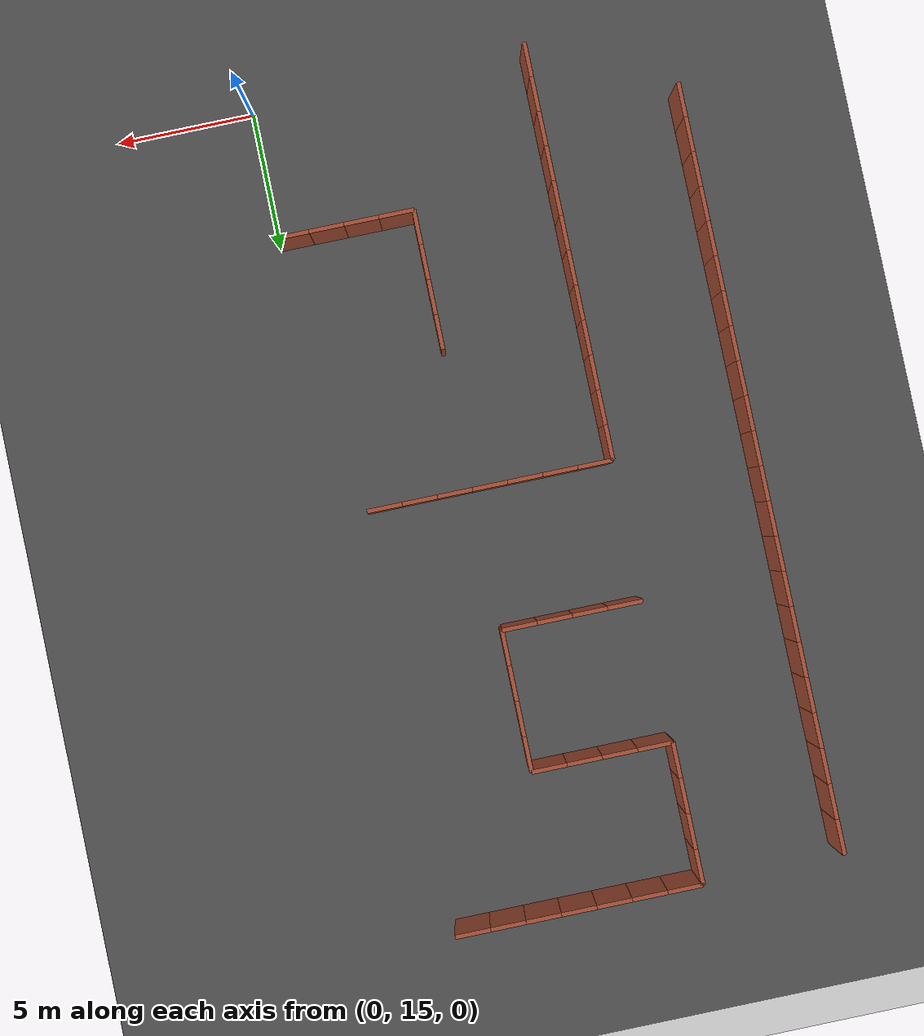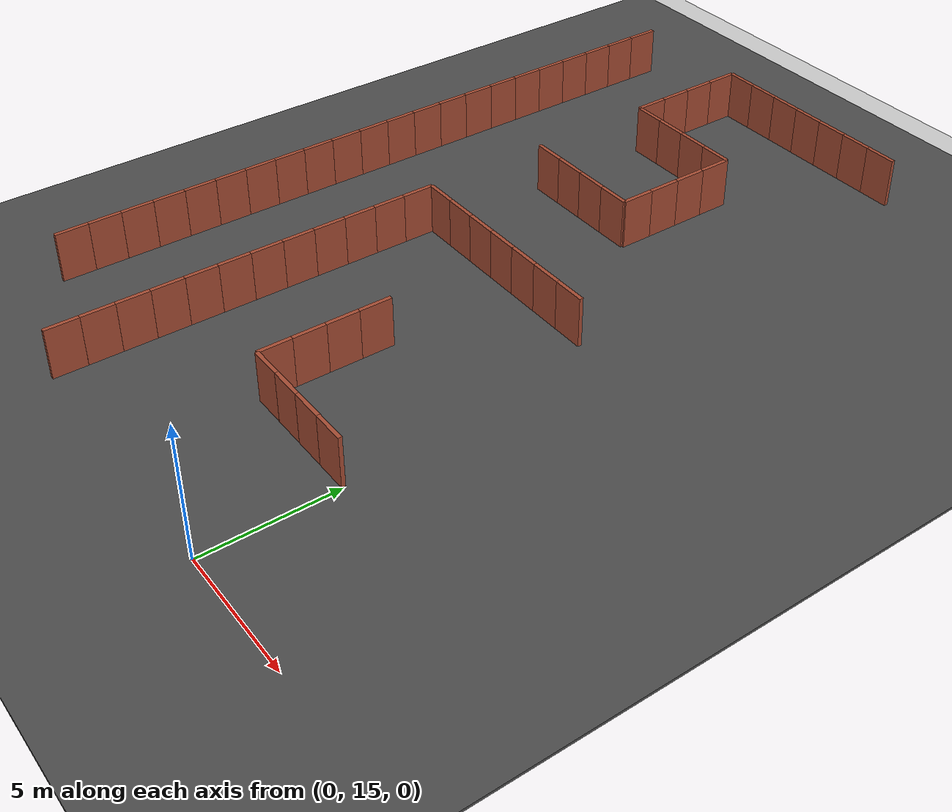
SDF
<sdf version="1.6">
 <world name="default">
  <model name="ground_plane">
   <static>1</static>
   <link name="link">
    <collision name="collision">
     <geometry><plane><normal>0 0 1</normal><size>100 100</size></plane></geometry>
     <surface><friction><ode><mu>100</mu><mu2>50</mu2></ode></friction></surface>
    </collision>
    <visual name="visual">
     <cast_shadows>0</cast_shadows>
     <geometry><plane><normal>0 0 1</normal><size>100 100</size></plane></geometry>
     <material>
      <script><uri>file://media/materials/scripts/gazebo.material</uri><name>Gazebo/Grey</name></script>
     </material>
    </visual>
   </link>
  </model>
  <model name="asphalt_plane">
   <static>1</static>
   <link name="link">
    <collision name="collision"><geometry><box><size>100 100 0.1</size></box></geometry></collision>
    <visual name="visual">
     <cast_shadows>0</cast_shadows>
     <geometry><box><size>100 100 0.1</size></box></geometry>
     <material>
      <script>
       <uri>model://asphalt_plane/materials/scripts</uri>
       <uri>model://asphalt_plane/materials/textures</uri>
       <name>vrc/asphalt</name>
      </script>
     </material>
    </visual>
   </link>
  </model>
  <model name="brick_wall_14_27_horizontal1">
   <pose>-15 18.125 0 0 -0 1.5708</pose>
   <link name="Wall_0">
    <collision name="Wall_0_Collision">
     <geometry><box><size>1.25 0.15 2</size></box></geometry>
     <pose>0 0 1 0 -0 0</pose>
    </collision>
    <visual name="Wall_0_Visual">
     <pose>0 0 1 0 -0 0</pose>
     <geometry><box><size>1.25 0.15 2</size></box></geometry>
     <material>
      <script><uri>file://media/materials/scripts/gazebo.material</uri><name>Gazebo/Bricks</name></script>
      <ambient>1 1 1 1</ambient>
     </material>
     <meta><layer>0</layer></meta>
    </visual>
   </link>
   <static>1</static>
  </model>
  <model name="brick_wall_14_28_horizontal1">
   <pose>-15 20.625 0 0 -0 1.5708</pose>
   <link name="Wall_0">
    <collision name="Wall_0_Collision">
     <geometry><box><size>1.25 0.15 2</size></box></geometry>
     <pose>0 0 1 0 -0 0</pose>
    </collision>
    <visual name="Wall_0_Visual">
     <pose>0 0 1 0 -0 0</pose>
     <geometry><box><size>1.25 0.15 2</size></box></geometry>
     <material>
      <script><uri>file://media/materials/scripts/gazebo.material</uri><name>Gazebo/Bricks</name></script>
      <ambient>1 1 1 1</ambient>
     </material>
     <meta><layer>0</layer></meta>
    </visual>
   </link>
   <static>1</static>
  </model>
  <model name="brick_wall_14_28_horizontal2">
   <pose>-15 19.375 0 0 -0 1.5708</pose>
   <link name="Wall_0">
    <collision name="Wall_0_Collision">
     <geometry><box><size>1.25 0.15 2</size></box></geometry>
     <pose>0 0 1 0 -0 0</pose>
    </collision>
    <visual name="Wall_0_Visual">
     <pose>0 0 1 0 -0 0</pose>
     <geometry><box><size>1.25 0.15 2</size></box></geometry>
     <material>
      <script><uri>file://media/materials/scripts/gazebo.material</uri><name>Gazebo/Bricks</name></script>
      <ambient>1 1 1 1</ambient>
     </material>
     <meta><layer>0</layer></meta>
    </visual>
   </link>
   <static>1</static>
  </model>
  <model name="brick_wall_14_29_horizontal1">
   <pose>-15 23.125 0 0 -0 1.5708</pose>
   <link name="Wall_0">
    <collision name="Wall_0_Collision">
     <geometry><box><size>1.25 0.15 2</size></box></geometry>
     <pose>0 0 1 0 -0 0</pose>
    </collision>
    <visual name="Wall_0_Visual">
     <pose>0 0 1 0 -0 0</pose>
     <geometry><box><size>1.25 0.15 2</size></box></geometry>
     <material>
      <script><uri>file://media/materials/scripts/gazebo.material</uri><name>Gazebo/Bricks</name></script>
      <ambient>1 1 1 1</ambient>
     </material>
     <meta><layer>0</layer></meta>
    </visual>
   </link>
   <static>1</static>
  </model>
  <model name="brick_wall_14_29_horizontal2">
   <pose>-15 21.875 0 0 -0 1.5708</pose>
   <link name="Wall_0">
    <collision name="Wall_0_Collision">
     <geometry><box><size>1.25 0.15 2</size></box></geometry>
     <pose>0 0 1 0 -0 0</pose>
    </collision>
    <visual name="Wall_0_Visual">
     <pose>0 0 1 0 -0 0</pose>
     <geometry><box><size>1.25 0.15 2</size></box></geometry>
     <material>
      <script><uri>file://media/materials/scripts/gazebo.material</uri><name>Gazebo/Bricks</name></script>
      <ambient>1 1 1 1</ambient>
     </material>
     <meta><layer>0</layer></meta>
    </visual>
   </link>
   <static>1</static>
  </model>
  <model name="brick_wall_14_30_horizontal1">
   <pose>-15 25.625 0 0 -0 1.5708</pose>
   <link name="Wall_0">
    <collision name="Wall_0_Collision">
     <geometry><box><size>1.25 0.15 2</size></box></geometry>
     <pose>0 0 1 0 -0 0</pose>
    </collision>
    <visual name="Wall_0_Visual">
     <pose>0 0 1 0 -0 0</pose>
     <geometry><box><size>1.25 0.15 2</size></box></geometry>
     <material>
      <script><uri>file://media/materials/scripts/gazebo.material</uri><name>Gazebo/Bricks</name></script>
      <ambient>1 1 1 1</ambient>
     </material>
     <meta><layer>0</layer></meta>
    </visual>
   </link>
   <static>1</static>
  </model>
  <model name="brick_wall_14_30_horizontal2">
   <pose>-15 24.375 0 0 -0 1.5708</pose>
   <link name="Wall_0">
    <collision name="Wall_0_Collision">
     <geometry><box><size>1.25 0.15 2</size></box></geometry>
     <pose>0 0 1 0 -0 0</pose>
    </collision>
    <visual name="Wall_0_Visual">
     <pose>0 0 1 0 -0 0</pose>
     <geometry><box><size>1.25 0.15 2</size></box></geometry>
     <material>
      <script><uri>file://media/materials/scripts/gazebo.material</uri><name>Gazebo/Bricks</name></script>
      <ambient>1 1 1 1</ambient>
     </material>
     <meta><layer>0</layer></meta>
    </visual>
   </link>
   <static>1</static>
  </model>
  <model name="brick_wall_14_31_horizontal1">
   <pose>-15 28.125 0 0 -0 1.5708</pose>
   <link name="Wall_0">
    <collision name="Wall_0_Collision">
     <geometry><box><size>1.25 0.15 2</size></box></geometry>
     <pose>0 0 1 0 -0 0</pose>
    </collision>
    <visual name="Wall_0_Visual">
     <pose>0 0 1 0 -0 0</pose>
     <geometry><box><size>1.25 0.15 2</size></box></geometry>
     <material>
      <script><uri>file://media/materials/scripts/gazebo.material</uri><name>Gazebo/Bricks</name></script>
      <ambient>1 1 1 1</ambient>
     </material>
     <meta><layer>0</layer></meta>
    </visual>
   </link>
   <static>1</static>
  </model>
  <model name="brick_wall_14_31_horizontal2">
   <pose>-15 26.875 0 0 -0 1.5708</pose>
   <link name="Wall_0">
    <collision name="Wall_0_Collision">
     <geometry><box><size>1.25 0.15 2</size></box></geometry>
     <pose>0 0 1 0 -0 0</pose>
    </collision>
    <visual name="Wall_0_Visual">
     <pose>0 0 1 0 -0 0</pose>
     <geometry><box><size>1.25 0.15 2</size></box></geometry>
     <material>
      <script><uri>file://media/materials/scripts/gazebo.material</uri><name>Gazebo/Bricks</name></script>
      <ambient>1 1 1 1</ambient>
     </material>
     <meta><layer>0</layer></meta>
    </visual>
   </link>
   <static>1</static>
  </model>
  <model name="brick_wall_14_32_horizontal1">
   <pose>-15 30.625 0 0 -0 1.5708</pose>
   <link name="Wall_0">
    <collision name="Wall_0_Collision">
     <geometry><box><size>1.25 0.15 2</size></box></geometry>
     <pose>0 0 1 0 -0 0</pose>
    </collision>
    <visual name="Wall_0_Visual">
     <pose>0 0 1 0 -0 0</pose>
     <geometry><box><size>1.25 0.15 2</size></box></geometry>
     <material>
      <script><uri>file://media/materials/scripts/gazebo.material</uri><name>Gazebo/Bricks</name></script>
      <ambient>1 1 1 1</ambient>
     </material>
     <meta><layer>0</layer></meta>
    </visual>
   </link>
   <static>1</static>
  </model>
  <model name="brick_wall_14_32_horizontal2">
   <pose>-15 29.375 0 0 -0 1.5708</pose>
   <link name="Wall_0">
    <collision name="Wall_0_Collision">
     <geometry><box><size>1.25 0.15 2</size></box></geometry>
     <pose>0 0 1 0 -0 0</pose>
    </collision>
    <visual name="Wall_0_Visual">
     <pose>0 0 1 0 -0 0</pose>
     <geometry><box><size>1.25 0.15 2</size></box></geometry>
     <material>
      <script><uri>file://media/materials/scripts/gazebo.material</uri><name>Gazebo/Bricks</name></script>
      <ambient>1 1 1 1</ambient>
     </material>
     <meta><layer>0</layer></meta>
    </visual>
   </link>
   <static>1</static>
  </model>
  <model name="brick_wall_14_33_horizontal1">
   <pose>-15 33.125 0 0 -0 1.5708</pose>
   <link name="Wall_0">
    <collision name="Wall_0_Collision">
     <geometry><box><size>1.25 0.15 2</size></box></geometry>
     <pose>0 0 1 0 -0 0</pose>
    </collision>
    <visual name="Wall_0_Visual">
     <pose>0 0 1 0 -0 0</pose>
     <geometry><box><size>1.25 0.15 2</size></box></geometry>
     <material>
      <script><uri>file://media/materials/scripts/gazebo.material</uri><name>Gazebo/Bricks</name></script>
      <ambient>1 1 1 1</ambient>
     </material>
     <meta><layer>0</layer></meta>
    </visual>
   </link>
   <static>1</static>
  </model>
  <model name="brick_wall_14_33_horizontal2">
   <pose>-15 31.875 0 0 -0 1.5708</pose>
   <link name="Wall_0">
    <collision name="Wall_0_Collision">
     <geometry><box><size>1.25 0.15 2</size></box></geometry>
     <pose>0 0 1 0 -0 0</pose>
    </collision>
    <visual name="Wall_0_Visual">
     <pose>0 0 1 0 -0 0</pose>
     <geometry><box><size>1.25 0.15 2</size></box></geometry>
     <material>
      <script><uri>file://media/materials/scripts/gazebo.material</uri><name>Gazebo/Bricks</name></script>
      <ambient>1 1 1 1</ambient>
     </material>
     <meta><layer>0</layer></meta>
    </visual>
   </link>
   <static>1</static>
  </model>
  <model name="brick_wall_14_34_horizontal1">
   <pose>-15 35.625 0 0 -0 1.5708</pose>
   <link name="Wall_0">
    <collision name="Wall_0_Collision">
     <geometry><box><size>1.25 0.15 2</size></box></geometry>
     <pose>0 0 1 0 -0 0</pose>
    </collision>
    <visual name="Wall_0_Visual">
     <pose>0 0 1 0 -0 0</pose>
     <geometry><box><size>1.25 0.15 2</size></box></geometry>
     <material>
      <script><uri>file://media/materials/scripts/gazebo.material</uri><name>Gazebo/Bricks</name></script>
      <ambient>1 1 1 1</ambient>
     </material>
     <meta><layer>0</layer></meta>
    </visual>
   </link>
   <static>1</static>
  </model>
  <model name="brick_wall_14_34_horizontal2">
   <pose>-15 34.375 0 0 -0 1.5708</pose>
   <link name="Wall_0">
    <collision name="Wall_0_Collision">
     <geometry><box><size>1.25 0.15 2</size></box></geometry>
     <pose>0 0 1 0 -0 0</pose>
    </collision>
    <visual name="Wall_0_Visual">
     <pose>0 0 1 0 -0 0</pose>
     <geometry><box><size>1.25 0.15 2</size></box></geometry>
     <material>
      <script><uri>file://media/materials/scripts/gazebo.material</uri><name>Gazebo/Bricks</name></script>
      <ambient>1 1 1 1</ambient>
     </material>
     <meta><layer>0</layer></meta>
    </visual>
   </link>
   <static>1</static>
  </model>
  <model name="brick_wall_14_35_horizontal1">
   <pose>-15 38.125 0 0 -0 1.5708</pose>
   <link name="Wall_0">
    <collision name="Wall_0_Collision">
     <geometry><box><size>1.25 0.15 2</size></box></geometry>
     <pose>0 0 1 0 -0 0</pose>
    </collision>
    <visual name="Wall_0_Visual">
     <pose>0 0 1 0 -0 0</pose>
     <geometry><box><size>1.25 0.15 2</size></box></geometry>
     <material>
      <script><uri>file://media/materials/scripts/gazebo.material</uri><name>Gazebo/Bricks</name></script>
      <ambient>1 1 1 1</ambient>
     </material>
     <meta><layer>0</layer></meta>
    </visual>
   </link>
   <static>1</static>
  </model>
  <model name="brick_wall_14_35_horizontal2">
   <pose>-15 36.875 0 0 -0 1.5708</pose>
   <link name="Wall_0">
    <collision name="Wall_0_Collision">
     <geometry><box><size>1.25 0.15 2</size></box></geometry>
     <pose>0 0 1 0 -0 0</pose>
    </collision>
    <visual name="Wall_0_Visual">
     <pose>0 0 1 0 -0 0</pose>
     <geometry><box><size>1.25 0.15 2</size></box></geometry>
     <material>
      <script><uri>file://media/materials/scripts/gazebo.material</uri><name>Gazebo/Bricks</name></script>
      <ambient>1 1 1 1</ambient>
     </material>
     <meta><layer>0</layer></meta>
    </visual>
   </link>
   <static>1</static>
  </model>
  <model name="brick_wall_14_36_horizontal1">
   <pose>-15 40.625 0 0 -0 1.5708</pose>
   <link name="Wall_0">
    <collision name="Wall_0_Collision">
     <geometry><box><size>1.25 0.15 2</size></box></geometry>
     <pose>0 0 1 0 -0 0</pose>
    </collision>
    <visual name="Wall_0_Visual">
     <pose>0 0 1 0 -0 0</pose>
     <geometry><box><size>1.25 0.15 2</size></box></geometry>
     <material>
      <script><uri>file://media/materials/scripts/gazebo.material</uri><name>Gazebo/Bricks</name></script>
      <ambient>1 1 1 1</ambient>
     </material>
     <meta><layer>0</layer></meta>
    </visual>
   </link>
   <static>1</static>
  </model>
  <model name="brick_wall_14_36_horizontal2">
   <pose>-15 39.375 0 0 -0 1.5708</pose>
   <link name="Wall_0">
    <collision name="Wall_0_Collision">
     <geometry><box><size>1.25 0.15 2</size></box></geometry>
     <pose>0 0 1 0 -0 0</pose>
    </collision>
    <visual name="Wall_0_Visual">
     <pose>0 0 1 0 -0 0</pose>
     <geometry><box><size>1.25 0.15 2</size></box></geometry>
     <material>
      <script><uri>file://media/materials/scripts/gazebo.material</uri><name>Gazebo/Bricks</name></script>
      <ambient>1 1 1 1</ambient>
     </material>
     <meta><layer>0</layer></meta>
    </visual>
   </link>
   <static>1</static>
  </model>
  <model name="brick_wall_14_37_horizontal1">
   <pose>-15 43.125 0 0 -0 1.5708</pose>
   <link name="Wall_0">
    <collision name="Wall_0_Collision">
     <geometry><box><size>1.25 0.15 2</size></box></geometry>
     <pose>0 0 1 0 -0 0</pose>
    </collision>
    <visual name="Wall_0_Visual">
     <pose>0 0 1 0 -0 0</pose>
     <geometry><box><size>1.25 0.15 2</size></box></geometry>
     <material>
      <script><uri>file://media/materials/scripts/gazebo.material</uri><name>Gazebo/Bricks</name></script>
      <ambient>1 1 1 1</ambient>
     </material>
     <meta><layer>0</layer></meta>
    </visual>
   </link>
   <static>1</static>
  </model>
  <model name="brick_wall_14_37_horizontal2">
   <pose>-15 41.875 0 0 -0 1.5708</pose>
   <link name="Wall_0">
    <collision name="Wall_0_Collision">
     <geometry><box><size>1.25 0.15 2</size></box></geometry>
     <pose>0 0 1 0 -0 0</pose>
    </collision>
    <visual name="Wall_0_Visual">
     <pose>0 0 1 0 -0 0</pose>
     <geometry><box><size>1.25 0.15 2</size></box></geometry>
     <material>
      <script><uri>file://media/materials/scripts/gazebo.material</uri><name>Gazebo/Bricks</name></script>
      <ambient>1 1 1 1</ambient>
     </material>
     <meta><layer>0</layer></meta>
    </visual>
   </link>
   <static>1</static>
  </model>
  <model name="brick_wall_14_38_horizontal2">
   <pose>-15 44.375 0 0 -0 1.5708</pose>
   <link name="Wall_0">
    <collision name="Wall_0_Collision">
     <geometry><box><size>1.25 0.15 2</size></box></geometry>
     <pose>0 0 1 0 -0 0</pose>
    </collision>
    <visual name="Wall_0_Visual">
     <pose>0 0 1 0 -0 0</pose>
     <geometry><box><size>1.25 0.15 2</size></box></geometry>
     <material>
      <script><uri>file://media/materials/scripts/gazebo.material</uri><name>Gazebo/Bricks</name></script>
      <ambient>1 1 1 1</ambient>
     </material>
     <meta><layer>0</layer></meta>
    </visual>
   </link>
   <static>1</static>
  </model>
  <model name="brick_wall_16_26_horizontal1">
   <pose>-10 15.625 0 0 -0 1.5708</pose>
   <link name="Wall_0">
    <collision name="Wall_0_Collision">
     <geometry><box><size>1.25 0.15 2</size></box></geometry>
     <pose>0 0 1 0 -0 0</pose>
    </collision>
    <visual name="Wall_0_Visual">
     <pose>0 0 1 0 -0 0</pose>
     <geometry><box><size>1.25 0.15 2</size></box></geometry>
     <material>
      <script><uri>file://media/materials/scripts/gazebo.material</uri><name>Gazebo/Bricks</name></script>
      <ambient>1 1 1 1</ambient>
     </material>
     <meta><layer>0</layer></meta>
    </visual>
   </link>
   <static>1</static>
  </model>
  <model name="brick_wall_16_27_horizontal1">
   <pose>-10 18.125 0 0 -0 1.5708</pose>
   <link name="Wall_0">
    <collision name="Wall_0_Collision">
     <geometry><box><size>1.25 0.15 2</size></box></geometry>
     <pose>0 0 1 0 -0 0</pose>
    </collision>
    <visual name="Wall_0_Visual">
     <pose>0 0 1 0 -0 0</pose>
     <geometry><box><size>1.25 0.15 2</size></box></geometry>
     <material>
      <script><uri>file://media/materials/scripts/gazebo.material</uri><name>Gazebo/Bricks</name></script>
      <ambient>1 1 1 1</ambient>
     </material>
     <meta><layer>0</layer></meta>
    </visual>
   </link>
   <static>1</static>
  </model>
  <model name="brick_wall_16_27_horizontal2">
   <pose>-10 16.875 0 0 -0 1.5708</pose>
   <link name="Wall_0">
    <collision name="Wall_0_Collision">
     <geometry><box><size>1.25 0.15 2</size></box></geometry>
     <pose>0 0 1 0 -0 0</pose>
    </collision>
    <visual name="Wall_0_Visual">
     <pose>0 0 1 0 -0 0</pose>
     <geometry><box><size>1.25 0.15 2</size></box></geometry>
     <material>
      <script><uri>file://media/materials/scripts/gazebo.material</uri><name>Gazebo/Bricks</name></script>
      <ambient>1 1 1 1</ambient>
     </material>
     <meta><layer>0</layer></meta>
    </visual>
   </link>
   <static>1</static>
  </model>
  <model name="brick_wall_16_28_horizontal1">
   <pose>-10 20.625 0 0 -0 1.5708</pose>
   <link name="Wall_0">
    <collision name="Wall_0_Collision">
     <geometry><box><size>1.25 0.15 2</size></box></geometry>
     <pose>0 0 1 0 -0 0</pose>
    </collision>
    <visual name="Wall_0_Visual">
     <pose>0 0 1 0 -0 0</pose>
     <geometry><box><size>1.25 0.15 2</size></box></geometry>
     <material>
      <script><uri>file://media/materials/scripts/gazebo.material</uri><name>Gazebo/Bricks</name></script>
      <ambient>1 1 1 1</ambient>
     </material>
     <meta><layer>0</layer></meta>
    </visual>
   </link>
   <static>1</static>
  </model>
  <model name="brick_wall_16_28_horizontal2">
   <pose>-10 19.375 0 0 -0 1.5708</pose>
   <link name="Wall_0">
    <collision name="Wall_0_Collision">
     <geometry><box><size>1.25 0.15 2</size></box></geometry>
     <pose>0 0 1 0 -0 0</pose>
    </collision>
    <visual name="Wall_0_Visual">
     <pose>0 0 1 0 -0 0</pose>
     <geometry><box><size>1.25 0.15 2</size></box></geometry>
     <material>
      <script><uri>file://media/materials/scripts/gazebo.material</uri><name>Gazebo/Bricks</name></script>
      <ambient>1 1 1 1</ambient>
     </material>
     <meta><layer>0</layer></meta>
    </visual>
   </link>
   <static>1</static>
  </model>
  <model name="brick_wall_16_29_horizontal1">
   <pose>-10 23.125 0 0 -0 1.5708</pose>
   <link name="Wall_0">
    <collision name="Wall_0_Collision">
     <geometry><box><size>1.25 0.15 2</size></box></geometry>
     <pose>0 0 1 0 -0 0</pose>
    </collision>
    <visual name="Wall_0_Visual">
     <pose>0 0 1 0 -0 0</pose>
     <geometry><box><size>1.25 0.15 2</size></box></geometry>
     <material>
      <script><uri>file://media/materials/scripts/gazebo.material</uri><name>Gazebo/Bricks</name></script>
      <ambient>1 1 1 1</ambient>
     </material>
     <meta><layer>0</layer></meta>
    </visual>
   </link>
   <static>1</static>
  </model>
  <model name="brick_wall_16_29_horizontal2">
   <pose>-10 21.875 0 0 -0 1.5708</pose>
   <link name="Wall_0">
    <collision name="Wall_0_Collision">
     <geometry><box><size>1.25 0.15 2</size></box></geometry>
     <pose>0 0 1 0 -0 0</pose>
    </collision>
    <visual name="Wall_0_Visual">
     <pose>0 0 1 0 -0 0</pose>
     <geometry><box><size>1.25 0.15 2</size></box></geometry>
     <material>
      <script><uri>file://media/materials/scripts/gazebo.material</uri><name>Gazebo/Bricks</name></script>
      <ambient>1 1 1 1</ambient>
     </material>
     <meta><layer>0</layer></meta>
    </visual>
   </link>
   <static>1</static>
  </model>
  <model name="brick_wall_16_30_horizontal1">
   <pose>-10 25.625 0 0 -0 1.5708</pose>
   <link name="Wall_0">
    <collision name="Wall_0_Collision">
     <geometry><box><size>1.25 0.15 2</size></box></geometry>
     <pose>0 0 1 0 -0 0</pose>
    </collision>
    <visual name="Wall_0_Visual">
     <pose>0 0 1 0 -0 0</pose>
     <geometry><box><size>1.25 0.15 2</size></box></geometry>
     <material>
      <script><uri>file://media/materials/scripts/gazebo.material</uri><name>Gazebo/Bricks</name></script>
      <ambient>1 1 1 1</ambient>
     </material>
     <meta><layer>0</layer></meta>
    </visual>
   </link>
   <static>1</static>
  </model>
  <model name="brick_wall_16_30_horizontal2">
   <pose>-10 24.375 0 0 -0 1.5708</pose>
   <link name="Wall_0">
    <collision name="Wall_0_Collision">
     <geometry><box><size>1.25 0.15 2</size></box></geometry>
     <pose>0 0 1 0 -0 0</pose>
    </collision>
    <visual name="Wall_0_Visual">
     <pose>0 0 1 0 -0 0</pose>
     <geometry><box><size>1.25 0.15 2</size></box></geometry>
     <material>
      <script><uri>file://media/materials/scripts/gazebo.material</uri><name>Gazebo/Bricks</name></script>
      <ambient>1 1 1 1</ambient>
     </material>
     <meta><layer>0</layer></meta>
    </visual>
   </link>
   <static>1</static>
  </model>
  <model name="brick_wall_16_31_horizontal1">
   <pose>-10 28.125 0 0 -0 1.5708</pose>
   <link name="Wall_0">
    <collision name="Wall_0_Collision">
     <geometry><box><size>1.25 0.15 2</size></box></geometry>
     <pose>0 0 1 0 -0 0</pose>
    </collision>
    <visual name="Wall_0_Visual">
     <pose>0 0 1 0 -0 0</pose>
     <geometry><box><size>1.25 0.15 2</size></box></geometry>
     <material>
      <script><uri>file://media/materials/scripts/gazebo.material</uri><name>Gazebo/Bricks</name></script>
      <ambient>1 1 1 1</ambient>
     </material>
     <meta><layer>0</layer></meta>
    </visual>
   </link>
   <static>1</static>
  </model>
  <model name="brick_wall_16_31_horizontal2">
   <pose>-10 26.875 0 0 -0 1.5708</pose>
   <link name="Wall_0">
    <collision name="Wall_0_Collision">
     <geometry><box><size>1.25 0.15 2</size></box></geometry>
     <pose>0 0 1 0 -0 0</pose>
    </collision>
    <visual name="Wall_0_Visual">
     <pose>0 0 1 0 -0 0</pose>
     <geometry><box><size>1.25 0.15 2</size></box></geometry>
     <material>
      <script><uri>file://media/materials/scripts/gazebo.material</uri><name>Gazebo/Bricks</name></script>
      <ambient>1 1 1 1</ambient>
     </material>
     <meta><layer>0</layer></meta>
    </visual>
   </link>
   <static>1</static>
  </model>
  <model name="brick_wall_16_32_vertical1">
   <pose>-9.375 30 0 0 -0 0</pose>
   <link name="Wall_0">
    <collision name="Wall_0_Collision">
     <geometry><box><size>1.25 0.15 2</size></box></geometry>
     <pose>0 0 1 0 -0 0</pose>
    </collision>
    <visual name="Wall_0_Visual">
     <pose>0 0 1 0 -0 0</pose>
     <geometry><box><size>1.25 0.15 2</size></box></geometry>
     <material>
      <script><uri>file://media/materials/scripts/gazebo.material</uri><name>Gazebo/Bricks</name></script>
      <ambient>1 1 1 1</ambient>
     </material>
     <meta><layer>0</layer></meta>
    </visual>
   </link>
   <static>1</static>
  </model>
  <model name="brick_wall_16_32_horizontal2">
   <pose>-10 29.375 0 0 -0 1.5708</pose>
   <link name="Wall_0">
    <collision name="Wall_0_Collision">
     <geometry><box><size>1.25 0.15 2</size></box></geometry>
     <pose>0 0 1 0 -0 0</pose>
    </collision>
    <visual name="Wall_0_Visual">
     <pose>0 0 1 0 -0 0</pose>
     <geometry><box><size>1.25 0.15 2</size></box></geometry>
     <material>
      <script><uri>file://media/materials/scripts/gazebo.material</uri><name>Gazebo/Bricks</name></script>
      <ambient>1 1 1 1</ambient>
     </material>
     <meta><layer>0</layer></meta>
    </visual>
   </link>
   <static>1</static>
  </model>
  <model name="brick_wall_16_34_vertical1">
   <pose>-9.375 35 0 0 -0 0</pose>
   <link name="Wall_0">
    <collision name="Wall_0_Collision">
     <geometry><box><size>1.25 0.15 2</size></box></geometry>
     <pose>0 0 1 0 -0 0</pose>
    </collision>
    <visual name="Wall_0_Visual">
     <pose>0 0 1 0 -0 0</pose>
     <geometry><box><size>1.25 0.15 2</size></box></geometry>
     <material>
      <script><uri>file://media/materials/scripts/gazebo.material</uri><name>Gazebo/Bricks</name></script>
      <ambient>1 1 1 1</ambient>
     </material>
     <meta><layer>0</layer></meta>
    </visual>
   </link>
   <static>1</static>
  </model>
  <model name="brick_wall_16_36_vertical1">
   <pose>-9.375 40 0 0 -0 0</pose>
   <link name="Wall_0">
    <collision name="Wall_0_Collision">
     <geometry><box><size>1.25 0.15 2</size></box></geometry>
     <pose>0 0 1 0 -0 0</pose>
    </collision>
    <visual name="Wall_0_Visual">
     <pose>0 0 1 0 -0 0</pose>
     <geometry><box><size>1.25 0.15 2</size></box></geometry>
     <material>
      <script><uri>file://media/materials/scripts/gazebo.material</uri><name>Gazebo/Bricks</name></script>
      <ambient>1 1 1 1</ambient>
     </material>
     <meta><layer>0</layer></meta>
    </visual>
   </link>
   <static>1</static>
  </model>
  <model name="brick_wall_16_36_horizontal1">
   <pose>-10 40.625 0 0 -0 1.5708</pose>
   <link name="Wall_0">
    <collision name="Wall_0_Collision">
     <geometry><box><size>1.25 0.15 2</size></box></geometry>
     <pose>0 0 1 0 -0 0</pose>
    </collision>
    <visual name="Wall_0_Visual">
     <pose>0 0 1 0 -0 0</pose>
     <geometry><box><size>1.25 0.15 2</size></box></geometry>
     <material>
      <script><uri>file://media/materials/scripts/gazebo.material</uri><name>Gazebo/Bricks</name></script>
      <ambient>1 1 1 1</ambient>
     </material>
     <meta><layer>0</layer></meta>
    </visual>
   </link>
   <static>1</static>
  </model>
  <model name="brick_wall_16_37_horizontal1">
   <pose>-10 43.125 0 0 -0 1.5708</pose>
   <link name="Wall_0">
    <collision name="Wall_0_Collision">
     <geometry><box><size>1.25 0.15 2</size></box></geometry>
     <pose>0 0 1 0 -0 0</pose>
    </collision>
    <visual name="Wall_0_Visual">
     <pose>0 0 1 0 -0 0</pose>
     <geometry><box><size>1.25 0.15 2</size></box></geometry>
     <material>
      <script><uri>file://media/materials/scripts/gazebo.material</uri><name>Gazebo/Bricks</name></script>
      <ambient>1 1 1 1</ambient>
     </material>
     <meta><layer>0</layer></meta>
    </visual>
   </link>
   <static>1</static>
  </model>
  <model name="brick_wall_16_37_horizontal2">
   <pose>-10 41.875 0 0 -0 1.5708</pose>
   <link name="Wall_0">
    <collision name="Wall_0_Collision">
     <geometry><box><size>1.25 0.15 2</size></box></geometry>
     <pose>0 0 1 0 -0 0</pose>
    </collision>
    <visual name="Wall_0_Visual">
     <pose>0 0 1 0 -0 0</pose>
     <geometry><box><size>1.25 0.15 2</size></box></geometry>
     <material>
      <script><uri>file://media/materials/scripts/gazebo.material</uri><name>Gazebo/Bricks</name></script>
      <ambient>1 1 1 1</ambient>
     </material>
     <meta><layer>0</layer></meta>
    </visual>
   </link>
   <static>1</static>
  </model>
  <model name="brick_wall_16_38_vertical1">
   <pose>-9.375 45 0 0 -0 0</pose>
   <link name="Wall_0">
    <collision name="Wall_0_Collision">
     <geometry><box><size>1.25 0.15 2</size></box></geometry>
     <pose>0 0 1 0 -0 0</pose>
    </collision>
    <visual name="Wall_0_Visual">
     <pose>0 0 1 0 -0 0</pose>
     <geometry><box><size>1.25 0.15 2</size></box></geometry>
     <material>
      <script><uri>file://media/materials/scripts/gazebo.material</uri><name>Gazebo/Bricks</name></script>
      <ambient>1 1 1 1</ambient>
     </material>
     <meta><layer>0</layer></meta>
    </visual>
   </link>
   <static>1</static>
  </model>
  <model name="brick_wall_16_38_horizontal2">
   <pose>-10 44.375 0 0 -0 1.5708</pose>
   <link name="Wall_0">
    <collision name="Wall_0_Collision">
     <geometry><box><size>1.25 0.15 2</size></box></geometry>
     <pose>0 0 1 0 -0 0</pose>
    </collision>
    <visual name="Wall_0_Visual">
     <pose>0 0 1 0 -0 0</pose>
     <geometry><box><size>1.25 0.15 2</size></box></geometry>
     <material>
      <script><uri>file://media/materials/scripts/gazebo.material</uri><name>Gazebo/Bricks</name></script>
      <ambient>1 1 1 1</ambient>
     </material>
     <meta><layer>0</layer></meta>
    </visual>
   </link>
   <static>1</static>
  </model>
  <model name="brick_wall_17_32_vertical1">
   <pose>-6.875 30 0 0 -0 0</pose>
   <link name="Wall_0">
    <collision name="Wall_0_Collision">
     <geometry><box><size>1.25 0.15 2</size></box></geometry>
     <pose>0 0 1 0 -0 0</pose>
    </collision>
    <visual name="Wall_0_Visual">
     <pose>0 0 1 0 -0 0</pose>
     <geometry><box><size>1.25 0.15 2</size></box></geometry>
     <material>
      <script><uri>file://media/materials/scripts/gazebo.material</uri><name>Gazebo/Bricks</name></script>
      <ambient>1 1 1 1</ambient>
     </material>
     <meta><layer>0</layer></meta>
    </visual>
   </link>
   <static>1</static>
  </model>
  <model name="brick_wall_17_32_vertical2">
   <pose>-8.125 30 0 0 -0 0</pose>
   <link name="Wall_0">
    <collision name="Wall_0_Collision">
     <geometry><box><size>1.25 0.15 2</size></box></geometry>
     <pose>0 0 1 0 -0 0</pose>
    </collision>
    <visual name="Wall_0_Visual">
     <pose>0 0 1 0 -0 0</pose>
     <geometry><box><size>1.25 0.15 2</size></box></geometry>
     <material>
      <script><uri>file://media/materials/scripts/gazebo.material</uri><name>Gazebo/Bricks</name></script>
      <ambient>1 1 1 1</ambient>
     </material>
     <meta><layer>0</layer></meta>
    </visual>
   </link>
   <static>1</static>
  </model>
  <model name="brick_wall_17_34_vertical1">
   <pose>-6.875 35 0 0 -0 0</pose>
   <link name="Wall_0">
    <collision name="Wall_0_Collision">
     <geometry><box><size>1.25 0.15 2</size></box></geometry>
     <pose>0 0 1 0 -0 0</pose>
    </collision>
    <visual name="Wall_0_Visual">
     <pose>0 0 1 0 -0 0</pose>
     <geometry><box><size>1.25 0.15 2</size></box></geometry>
     <material>
      <script><uri>file://media/materials/scripts/gazebo.material</uri><name>Gazebo/Bricks</name></script>
      <ambient>1 1 1 1</ambient>
     </material>
     <meta><layer>0</layer></meta>
    </visual>
   </link>
   <static>1</static>
  </model>
  <model name="brick_wall_17_34_vertical2">
   <pose>-8.125 35 0 0 -0 0</pose>
   <link name="Wall_0">
    <collision name="Wall_0_Collision">
     <geometry><box><size>1.25 0.15 2</size></box></geometry>
     <pose>0 0 1 0 -0 0</pose>
    </collision>
    <visual name="Wall_0_Visual">
     <pose>0 0 1 0 -0 0</pose>
     <geometry><box><size>1.25 0.15 2</size></box></geometry>
     <material>
      <script><uri>file://media/materials/scripts/gazebo.material</uri><name>Gazebo/Bricks</name></script>
      <ambient>1 1 1 1</ambient>
     </material>
     <meta><layer>0</layer></meta>
    </visual>
   </link>
   <static>1</static>
  </model>
  <model name="brick_wall_17_36_vertical1">
   <pose>-6.875 40 0 0 -0 0</pose>
   <link name="Wall_0">
    <collision name="Wall_0_Collision">
     <geometry><box><size>1.25 0.15 2</size></box></geometry>
     <pose>0 0 1 0 -0 0</pose>
    </collision>
    <visual name="Wall_0_Visual">
     <pose>0 0 1 0 -0 0</pose>
     <geometry><box><size>1.25 0.15 2</size></box></geometry>
     <material>
      <script><uri>file://media/materials/scripts/gazebo.material</uri><name>Gazebo/Bricks</name></script>
      <ambient>1 1 1 1</ambient>
     </material>
     <meta><layer>0</layer></meta>
    </visual>
   </link>
   <static>1</static>
  </model>
  <model name="brick_wall_17_36_vertical2">
   <pose>-8.125 40 0 0 -0 0</pose>
   <link name="Wall_0">
    <collision name="Wall_0_Collision">
     <geometry><box><size>1.25 0.15 2</size></box></geometry>
     <pose>0 0 1 0 -0 0</pose>
    </collision>
    <visual name="Wall_0_Visual">
     <pose>0 0 1 0 -0 0</pose>
     <geometry><box><size>1.25 0.15 2</size></box></geometry>
     <material>
      <script><uri>file://media/materials/scripts/gazebo.material</uri><name>Gazebo/Bricks</name></script>
      <ambient>1 1 1 1</ambient>
     </material>
     <meta><layer>0</layer></meta>
    </visual>
   </link>
   <static>1</static>
  </model>
  <model name="brick_wall_17_38_vertical1">
   <pose>-6.875 45 0 0 -0 0</pose>
   <link name="Wall_0">
    <collision name="Wall_0_Collision">
     <geometry><box><size>1.25 0.15 2</size></box></geometry>
     <pose>0 0 1 0 -0 0</pose>
    </collision>
    <visual name="Wall_0_Visual">
     <pose>0 0 1 0 -0 0</pose>
     <geometry><box><size>1.25 0.15 2</size></box></geometry>
     <material>
      <script><uri>file://media/materials/scripts/gazebo.material</uri><name>Gazebo/Bricks</name></script>
      <ambient>1 1 1 1</ambient>
     </material>
     <meta><layer>0</layer></meta>
    </visual>
   </link>
   <static>1</static>
  </model>
  <model name="brick_wall_17_38_vertical2">
   <pose>-8.125 45 0 0 -0 0</pose>
   <link name="Wall_0">
    <collision name="Wall_0_Collision">
     <geometry><box><size>1.25 0.15 2</size></box></geometry>
     <pose>0 0 1 0 -0 0</pose>
    </collision>
    <visual name="Wall_0_Visual">
     <pose>0 0 1 0 -0 0</pose>
     <geometry><box><size>1.25 0.15 2</size></box></geometry>
     <material>
      <script><uri>file://media/materials/scripts/gazebo.material</uri><name>Gazebo/Bricks</name></script>
      <ambient>1 1 1 1</ambient>
     </material>
     <meta><layer>0</layer></meta>
    </visual>
   </link>
   <static>1</static>
  </model>
  <model name="brick_wall_18_28_vertical1">
   <pose>-4.375 20 0 0 -0 0</pose>
   <link name="Wall_0">
    <collision name="Wall_0_Collision">
     <geometry><box><size>1.25 0.15 2</size></box></geometry>
     <pose>0 0 1 0 -0 0</pose>
    </collision>
    <visual name="Wall_0_Visual">
     <pose>0 0 1 0 -0 0</pose>
     <geometry><box><size>1.25 0.15 2</size></box></geometry>
     <material>
      <script><uri>file://media/materials/scripts/gazebo.material</uri><name>Gazebo/Bricks</name></script>
      <ambient>1 1 1 1</ambient>
     </material>
     <meta><layer>0</layer></meta>
    </visual>
   </link>
   <static>1</static>
  </model>
  <model name="brick_wall_18_28_horizontal1">
   <pose>-5 20.625 0 0 -0 1.5708</pose>
   <link name="Wall_0">
    <collision name="Wall_0_Collision">
     <geometry><box><size>1.25 0.15 2</size></box></geometry>
     <pose>0 0 1 0 -0 0</pose>
    </collision>
    <visual name="Wall_0_Visual">
     <pose>0 0 1 0 -0 0</pose>
     <geometry><box><size>1.25 0.15 2</size></box></geometry>
     <material>
      <script><uri>file://media/materials/scripts/gazebo.material</uri><name>Gazebo/Bricks</name></script>
      <ambient>1 1 1 1</ambient>
     </material>
     <meta><layer>0</layer></meta>
    </visual>
   </link>
   <static>1</static>
  </model>
  <model name="brick_wall_18_29_horizontal1">
   <pose>-5 23.125 0 0 -0 1.5708</pose>
   <link name="Wall_0">
    <collision name="Wall_0_Collision">
     <geometry><box><size>1.25 0.15 2</size></box></geometry>
     <pose>0 0 1 0 -0 0</pose>
    </collision>
    <visual name="Wall_0_Visual">
     <pose>0 0 1 0 -0 0</pose>
     <geometry><box><size>1.25 0.15 2</size></box></geometry>
     <material>
      <script><uri>file://media/materials/scripts/gazebo.material</uri><name>Gazebo/Bricks</name></script>
      <ambient>1 1 1 1</ambient>
     </material>
     <meta><layer>0</layer></meta>
    </visual>
   </link>
   <static>1</static>
  </model>
  <model name="brick_wall_18_29_horizontal2">
   <pose>-5 21.875 0 0 -0 1.5708</pose>
   <link name="Wall_0">
    <collision name="Wall_0_Collision">
     <geometry><box><size>1.25 0.15 2</size></box></geometry>
     <pose>0 0 1 0 -0 0</pose>
    </collision>
    <visual name="Wall_0_Visual">
     <pose>0 0 1 0 -0 0</pose>
     <geometry><box><size>1.25 0.15 2</size></box></geometry>
     <material>
      <script><uri>file://media/materials/scripts/gazebo.material</uri><name>Gazebo/Bricks</name></script>
      <ambient>1 1 1 1</ambient>
     </material>
     <meta><layer>0</layer></meta>
    </visual>
   </link>
   <static>1</static>
  </model>
  <model name="brick_wall_18_30_horizontal2">
   <pose>-5 24.375 0 0 -0 1.5708</pose>
   <link name="Wall_0">
    <collision name="Wall_0_Collision">
     <geometry><box><size>1.25 0.15 2</size></box></geometry>
     <pose>0 0 1 0 -0 0</pose>
    </collision>
    <visual name="Wall_0_Visual">
     <pose>0 0 1 0 -0 0</pose>
     <geometry><box><size>1.25 0.15 2</size></box></geometry>
     <material>
      <script><uri>file://media/materials/scripts/gazebo.material</uri><name>Gazebo/Bricks</name></script>
      <ambient>1 1 1 1</ambient>
     </material>
     <meta><layer>0</layer></meta>
    </visual>
   </link>
   <static>1</static>
  </model>
  <model name="brick_wall_18_32_vertical1">
   <pose>-4.375 30 0 0 -0 0</pose>
   <link name="Wall_0">
    <collision name="Wall_0_Collision">
     <geometry><box><size>1.25 0.15 2</size></box></geometry>
     <pose>0 0 1 0 -0 0</pose>
    </collision>
    <visual name="Wall_0_Visual">
     <pose>0 0 1 0 -0 0</pose>
     <geometry><box><size>1.25 0.15 2</size></box></geometry>
     <material>
      <script><uri>file://media/materials/scripts/gazebo.material</uri><name>Gazebo/Bricks</name></script>
      <ambient>1 1 1 1</ambient>
     </material>
     <meta><layer>0</layer></meta>
    </visual>
   </link>
   <static>1</static>
  </model>
  <model name="brick_wall_18_32_vertical2">
   <pose>-5.625 30 0 0 -0 0</pose>
   <link name="Wall_0">
    <collision name="Wall_0_Collision">
     <geometry><box><size>1.25 0.15 2</size></box></geometry>
     <pose>0 0 1 0 -0 0</pose>
    </collision>
    <visual name="Wall_0_Visual">
     <pose>0 0 1 0 -0 0</pose>
     <geometry><box><size>1.25 0.15 2</size></box></geometry>
     <material>
      <script><uri>file://media/materials/scripts/gazebo.material</uri><name>Gazebo/Bricks</name></script>
      <ambient>1 1 1 1</ambient>
     </material>
     <meta><layer>0</layer></meta>
    </visual>
   </link>
   <static>1</static>
  </model>
  <model name="brick_wall_18_34_vertical2">
   <pose>-5.625 35 0 0 -0 0</pose>
   <link name="Wall_0">
    <collision name="Wall_0_Collision">
     <geometry><box><size>1.25 0.15 2</size></box></geometry>
     <pose>0 0 1 0 -0 0</pose>
    </collision>
    <visual name="Wall_0_Visual">
     <pose>0 0 1 0 -0 0</pose>
     <geometry><box><size>1.25 0.15 2</size></box></geometry>
     <material>
      <script><uri>file://media/materials/scripts/gazebo.material</uri><name>Gazebo/Bricks</name></script>
      <ambient>1 1 1 1</ambient>
     </material>
     <meta><layer>0</layer></meta>
    </visual>
   </link>
   <static>1</static>
  </model>
  <model name="brick_wall_18_34_horizontal1">
   <pose>-5 35.625 0 0 -0 1.5708</pose>
   <link name="Wall_0">
    <collision name="Wall_0_Collision">
     <geometry><box><size>1.25 0.15 2</size></box></geometry>
     <pose>0 0 1 0 -0 0</pose>
    </collision>
    <visual name="Wall_0_Visual">
     <pose>0 0 1 0 -0 0</pose>
     <geometry><box><size>1.25 0.15 2</size></box></geometry>
     <material>
      <script><uri>file://media/materials/scripts/gazebo.material</uri><name>Gazebo/Bricks</name></script>
      <ambient>1 1 1 1</ambient>
     </material>
     <meta><layer>0</layer></meta>
    </visual>
   </link>
   <static>1</static>
  </model>
  <model name="brick_wall_18_35_horizontal1">
   <pose>-5 38.125 0 0 -0 1.5708</pose>
   <link name="Wall_0">
    <collision name="Wall_0_Collision">
     <geometry><box><size>1.25 0.15 2</size></box></geometry>
     <pose>0 0 1 0 -0 0</pose>
    </collision>
    <visual name="Wall_0_Visual">
     <pose>0 0 1 0 -0 0</pose>
     <geometry><box><size>1.25 0.15 2</size></box></geometry>
     <material>
      <script><uri>file://media/materials/scripts/gazebo.material</uri><name>Gazebo/Bricks</name></script>
      <ambient>1 1 1 1</ambient>
     </material>
     <meta><layer>0</layer></meta>
    </visual>
   </link>
   <static>1</static>
  </model>
  <model name="brick_wall_18_35_horizontal2">
   <pose>-5 36.875 0 0 -0 1.5708</pose>
   <link name="Wall_0">
    <collision name="Wall_0_Collision">
     <geometry><box><size>1.25 0.15 2</size></box></geometry>
     <pose>0 0 1 0 -0 0</pose>
    </collision>
    <visual name="Wall_0_Visual">
     <pose>0 0 1 0 -0 0</pose>
     <geometry><box><size>1.25 0.15 2</size></box></geometry>
     <material>
      <script><uri>file://media/materials/scripts/gazebo.material</uri><name>Gazebo/Bricks</name></script>
      <ambient>1 1 1 1</ambient>
     </material>
     <meta><layer>0</layer></meta>
    </visual>
   </link>
   <static>1</static>
  </model>
  <model name="brick_wall_18_36_vertical2">
   <pose>-5.625 40 0 0 -0 0</pose>
   <link name="Wall_0">
    <collision name="Wall_0_Collision">
     <geometry><box><size>1.25 0.15 2</size></box></geometry>
     <pose>0 0 1 0 -0 0</pose>
    </collision>
    <visual name="Wall_0_Visual">
     <pose>0 0 1 0 -0 0</pose>
     <geometry><box><size>1.25 0.15 2</size></box></geometry>
     <material>
      <script><uri>file://media/materials/scripts/gazebo.material</uri><name>Gazebo/Bricks</name></script>
      <ambient>1 1 1 1</ambient>
     </material>
     <meta><layer>0</layer></meta>
    </visual>
   </link>
   <static>1</static>
  </model>
  <model name="brick_wall_18_36_horizontal2">
   <pose>-5 39.375 0 0 -0 1.5708</pose>
   <link name="Wall_0">
    <collision name="Wall_0_Collision">
     <geometry><box><size>1.25 0.15 2</size></box></geometry>
     <pose>0 0 1 0 -0 0</pose>
    </collision>
    <visual name="Wall_0_Visual">
     <pose>0 0 1 0 -0 0</pose>
     <geometry><box><size>1.25 0.15 2</size></box></geometry>
     <material>
      <script><uri>file://media/materials/scripts/gazebo.material</uri><name>Gazebo/Bricks</name></script>
      <ambient>1 1 1 1</ambient>
     </material>
     <meta><layer>0</layer></meta>
    </visual>
   </link>
   <static>1</static>
  </model>
  <model name="brick_wall_18_38_vertical1">
   <pose>-4.375 45 0 0 -0 0</pose>
   <link name="Wall_0">
    <collision name="Wall_0_Collision">
     <geometry><box><size>1.25 0.15 2</size></box></geometry>
     <pose>0 0 1 0 -0 0</pose>
    </collision>
    <visual name="Wall_0_Visual">
     <pose>0 0 1 0 -0 0</pose>
     <geometry><box><size>1.25 0.15 2</size></box></geometry>
     <material>
      <script><uri>file://media/materials/scripts/gazebo.material</uri><name>Gazebo/Bricks</name></script>
      <ambient>1 1 1 1</ambient>
     </material>
     <meta><layer>0</layer></meta>
    </visual>
   </link>
   <static>1</static>
  </model>
  <model name="brick_wall_18_38_vertical2">
   <pose>-5.625 45 0 0 -0 0</pose>
   <link name="Wall_0">
    <collision name="Wall_0_Collision">
     <geometry><box><size>1.25 0.15 2</size></box></geometry>
     <pose>0 0 1 0 -0 0</pose>
    </collision>
    <visual name="Wall_0_Visual">
     <pose>0 0 1 0 -0 0</pose>
     <geometry><box><size>1.25 0.15 2</size></box></geometry>
     <material>
      <script><uri>file://media/materials/scripts/gazebo.material</uri><name>Gazebo/Bricks</name></script>
      <ambient>1 1 1 1</ambient>
     </material>
     <meta><layer>0</layer></meta>
    </visual>
   </link>
   <static>1</static>
  </model>
  <model name="brick_wall_19_28_vertical1">
   <pose>-1.875 20 0 0 -0 0</pose>
   <link name="Wall_0">
    <collision name="Wall_0_Collision">
     <geometry><box><size>1.25 0.15 2</size></box></geometry>
     <pose>0 0 1 0 -0 0</pose>
    </collision>
    <visual name="Wall_0_Visual">
     <pose>0 0 1 0 -0 0</pose>
     <geometry><box><size>1.25 0.15 2</size></box></geometry>
     <material>
      <script><uri>file://media/materials/scripts/gazebo.material</uri><name>Gazebo/Bricks</name></script>
      <ambient>1 1 1 1</ambient>
     </material>
     <meta><layer>0</layer></meta>
    </visual>
   </link>
   <static>1</static>
  </model>
  <model name="brick_wall_19_28_vertical2">
   <pose>-3.125 20 0 0 -0 0</pose>
   <link name="Wall_0">
    <collision name="Wall_0_Collision">
     <geometry><box><size>1.25 0.15 2</size></box></geometry>
     <pose>0 0 1 0 -0 0</pose>
    </collision>
    <visual name="Wall_0_Visual">
     <pose>0 0 1 0 -0 0</pose>
     <geometry><box><size>1.25 0.15 2</size></box></geometry>
     <material>
      <script><uri>file://media/materials/scripts/gazebo.material</uri><name>Gazebo/Bricks</name></script>
      <ambient>1 1 1 1</ambient>
     </material>
     <meta><layer>0</layer></meta>
    </visual>
   </link>
   <static>1</static>
  </model>
  <model name="brick_wall_19_32_vertical1">
   <pose>-1.875 30 0 0 -0 0</pose>
   <link name="Wall_0">
    <collision name="Wall_0_Collision">
     <geometry><box><size>1.25 0.15 2</size></box></geometry>
     <pose>0 0 1 0 -0 0</pose>
    </collision>
    <visual name="Wall_0_Visual">
     <pose>0 0 1 0 -0 0</pose>
     <geometry><box><size>1.25 0.15 2</size></box></geometry>
     <material>
      <script><uri>file://media/materials/scripts/gazebo.material</uri><name>Gazebo/Bricks</name></script>
      <ambient>1 1 1 1</ambient>
     </material>
     <meta><layer>0</layer></meta>
    </visual>
   </link>
   <static>1</static>
  </model>
  <model name="brick_wall_19_32_vertical2">
   <pose>-3.125 30 0 0 -0 0</pose>
   <link name="Wall_0">
    <collision name="Wall_0_Collision">
     <geometry><box><size>1.25 0.15 2</size></box></geometry>
     <pose>0 0 1 0 -0 0</pose>
    </collision>
    <visual name="Wall_0_Visual">
     <pose>0 0 1 0 -0 0</pose>
     <geometry><box><size>1.25 0.15 2</size></box></geometry>
     <material>
      <script><uri>file://media/materials/scripts/gazebo.material</uri><name>Gazebo/Bricks</name></script>
      <ambient>1 1 1 1</ambient>
     </material>
     <meta><layer>0</layer></meta>
    </visual>
   </link>
   <static>1</static>
  </model>
  <model name="brick_wall_19_38_vertical1">
   <pose>-1.875 45 0 0 -0 0</pose>
   <link name="Wall_0">
    <collision name="Wall_0_Collision">
     <geometry><box><size>1.25 0.15 2</size></box></geometry>
     <pose>0 0 1 0 -0 0</pose>
    </collision>
    <visual name="Wall_0_Visual">
     <pose>0 0 1 0 -0 0</pose>
     <geometry><box><size>1.25 0.15 2</size></box></geometry>
     <material>
      <script><uri>file://media/materials/scripts/gazebo.material</uri><name>Gazebo/Bricks</name></script>
      <ambient>1 1 1 1</ambient>
     </material>
     <meta><layer>0</layer></meta>
    </visual>
   </link>
   <static>1</static>
  </model>
  <model name="brick_wall_19_38_vertical2">
   <pose>-3.125 45 0 0 -0 0</pose>
   <link name="Wall_0">
    <collision name="Wall_0_Collision">
     <geometry><box><size>1.25 0.15 2</size></box></geometry>
     <pose>0 0 1 0 -0 0</pose>
    </collision>
    <visual name="Wall_0_Visual">
     <pose>0 0 1 0 -0 0</pose>
     <geometry><box><size>1.25 0.15 2</size></box></geometry>
     <material>
      <script><uri>file://media/materials/scripts/gazebo.material</uri><name>Gazebo/Bricks</name></script>
      <ambient>1 1 1 1</ambient>
     </material>
     <meta><layer>0</layer></meta>
    </visual>
   </link>
   <static>1</static>
  </model>
  <model name="brick_wall_20_28_vertical2">
   <pose>-0.625 20 0 0 -0 0</pose>
   <link name="Wall_0">
    <collision name="Wall_0_Collision">
     <geometry><box><size>1.25 0.15 2</size></box></geometry>
     <pose>0 0 1 0 -0 0</pose>
    </collision>
    <visual name="Wall_0_Visual">
     <pose>0 0 1 0 -0 0</pose>
     <geometry><box><size>1.25 0.15 2</size></box></geometry>
     <material>
      <script><uri>file://media/materials/scripts/gazebo.material</uri><name>Gazebo/Bricks</name></script>
      <ambient>1 1 1 1</ambient>
     </material>
     <meta><layer>0</layer></meta>
    </visual>
   </link>
   <static>1</static>
  </model>
 </world>
</sdf>
